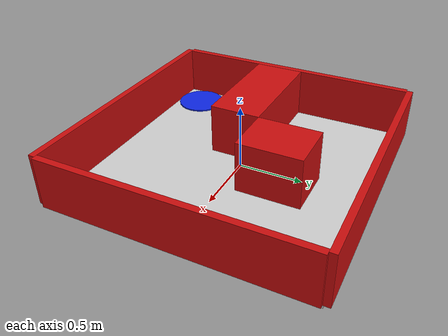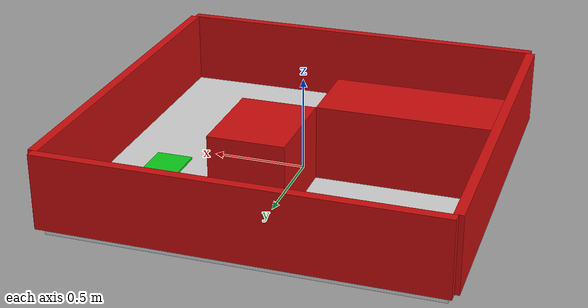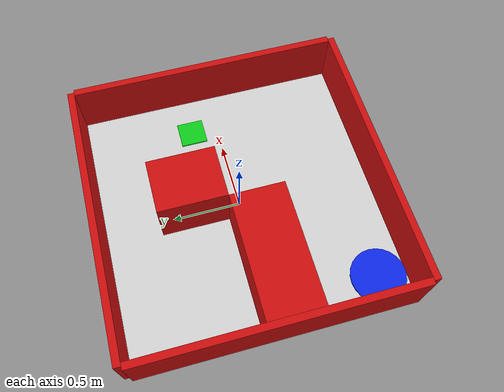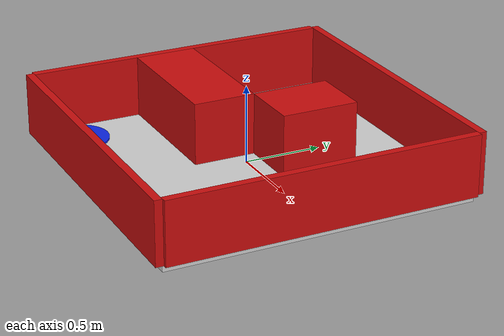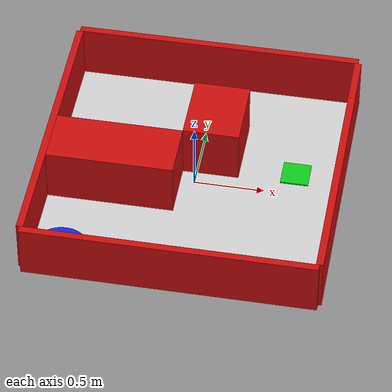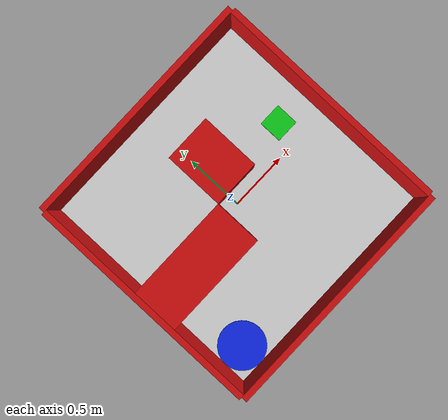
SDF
<?xml version="1.0"?>
<sdf version="1.6">
  <world name="hj_reach_target">
    <plugin filename="gz-sim-physics-system" name="gz::sim::systems::Physics"/>
    <plugin filename="gz-sim-user-commands-system" name="gz::sim::systems::UserCommands"/>
    <plugin filename="gz-sim-scene-broadcaster-system" name="gz::sim::systems::SceneBroadcaster"/>

    <physics name="default_physics" type="ode">
      <max_step_size>0.001</max_step_size>
      <real_time_factor>1</real_time_factor>
      <real_time_update_rate>1000</real_time_update_rate>
    </physics>

    <gravity>0 0 -9.8</gravity>
    <scene>
      <ambient>0.7 0.7 0.7 1</ambient>
      <background>0.9 0.9 0.9 1</background>
      <shadows>true</shadows>
    </scene>

    <light name="sun" type="directional">
      <cast_shadows>true</cast_shadows>
      <pose>0 0 5 0 0 0</pose>
      <diffuse>0.8 0.8 0.8 1</diffuse>
      <specular>0.2 0.2 0.2 1</specular>
      <direction>-0.5 0.2 -1</direction>
    </light>

    <!-- A 2 m x 2 m floor; its top surface is at z=0. -->
    <model name="map_floor">
      <static>true</static>
      <link name="floor">
        <collision name="floor_collision">
          <pose>0 0 -0.025 0 0 0</pose>
          <geometry><box><size>2 2 0.05</size></box></geometry>
        </collision>
        <visual name="floor_visual">
          <pose>0 0 -0.025 0 0 0</pose>
          <geometry><box><size>2 2 0.05</size></box></geometry>
          <material>
            <ambient>0.82 0.82 0.82 1</ambient>
            <diffuse>0.82 0.82 0.82 1</diffuse>
          </material>
        </visual>
      </link>
    </model>

    <!-- Red perimeter walls surround the [-1, 1] x [-1, 1] map. -->
    <model name="map_walls">
      <static>true</static>
      <link name="walls">
        <collision name="north_collision">
          <pose>0 1.025 0.2 0 0 0</pose>
          <geometry><box><size>2.05 0.05 0.4</size></box></geometry>
        </collision>
        <visual name="north_visual">
          <pose>0 1.025 0.2 0 0 0</pose>
          <geometry><box><size>2.05 0.05 0.4</size></box></geometry>
          <material><ambient>0.8 0.05 0.05 1</ambient><diffuse>0.8 0.05 0.05 1</diffuse></material>
        </visual>
        <collision name="south_collision">
          <pose>0 -1.025 0.2 0 0 0</pose>
          <geometry><box><size>2.05 0.05 0.4</size></box></geometry>
        </collision>
        <visual name="south_visual">
          <pose>0 -1.025 0.2 0 0 0</pose>
          <geometry><box><size>2.05 0.05 0.4</size></box></geometry>
          <material><ambient>0.8 0.05 0.05 1</ambient><diffuse>0.8 0.05 0.05 1</diffuse></material>
        </visual>
        <collision name="west_collision">
          <pose>-1.025 0 0.2 0 0 0</pose>
          <geometry><box><size>0.05 2 0.4</size></box></geometry>
        </collision>
        <visual name="west_visual">
          <pose>-1.025 0 0.2 0 0 0</pose>
          <geometry><box><size>0.05 2 0.4</size></box></geometry>
          <material><ambient>0.8 0.05 0.05 1</ambient><diffuse>0.8 0.05 0.05 1</diffuse></material>
        </visual>
        <collision name="east_collision">
          <pose>1.025 0 0.2 0 0 0</pose>
          <geometry><box><size>0.05 2 0.4</size></box></geometry>
        </collision>
        <visual name="east_visual">
          <pose>1.025 0 0.2 0 0 0</pose>
          <geometry><box><size>0.05 2 0.4</size></box></geometry>
          <material><ambient>0.8 0.05 0.05 1</ambient><diffuse>0.8 0.05 0.05 1</diffuse></material>
        </visual>
      </link>
    </model>

    <!-- Obstacle 1: x=[-0.1, 0.3], y=[0.1, 0.6]. -->
    <model name="obstacle_1">
      <static>true</static>
      <pose>0.1 0.35 0.2 0 0 0</pose>
      <link name="body">
        <collision name="collision">
          <geometry><box><size>0.4 0.5 0.4</size></box></geometry>
        </collision>
        <visual name="visual">
          <geometry><box><size>0.4 0.5 0.4</size></box></geometry>
          <material><ambient>0.8 0.05 0.05 1</ambient><diffuse>0.8 0.05 0.05 1</diffuse></material>
        </visual>
      </link>
    </model>

    <!-- Obstacle 2: x=[-1.0, -0.1], y=[-0.3, 0.1]. -->
    <model name="obstacle_2">
      <static>true</static>
      <pose>-0.55 -0.1 0.2 0 0 0</pose>
      <link name="body">
        <collision name="collision">
          <geometry><box><size>0.9 0.4 0.4</size></box></geometry>
        </collision>
        <visual name="visual">
          <geometry><box><size>0.9 0.4 0.4</size></box></geometry>
          <material><ambient>0.8 0.05 0.05 1</ambient><diffuse>0.8 0.05 0.05 1</diffuse></material>
        </visual>
      </link>
    </model>

    <!-- Green goal region: x=[0.6, 0.8], y=[0.1, 0.3]; visual only. -->
    <model name="goal_region">
      <static>true</static>
      <pose>0.7 0.2 0.006 0 0 0</pose>
      <link name="marker">
        <visual name="visual">
          <geometry><box><size>0.2 0.2 0.012</size></box></geometry>
          <material>
            <ambient>0.05 0.8 0.1 1</ambient>
            <diffuse>0.05 0.8 0.1 1</diffuse>
            <emissive>0.02 0.15 0.02 1</emissive>
          </material>
        </visual>
      </link>
    </model>

    <!-- Blue start marker at (-0.8, -0.8), radius 0.2; visual only. -->
    <model name="start_marker">
      <static>true</static>
      <pose>-0.8 -0.8 0.006 0 0 0</pose>
      <link name="marker">
        <visual name="visual">
          <geometry><cylinder><radius>0.2</radius><length>0.012</length></cylinder></geometry>
          <material>
            <ambient>0.05 0.15 0.9 1</ambient>
            <diffuse>0.05 0.15 0.9 1</diffuse>
          </material>
        </visual>
      </link>
    </model>

    <gui fullscreen="0">
      <camera name="user_camera">
        <pose>0 -0.1 3.7 0 1.5708 0</pose>
        <view_controller>orbit</view_controller>
      </camera>
    </gui>
  </world>
</sdf>
